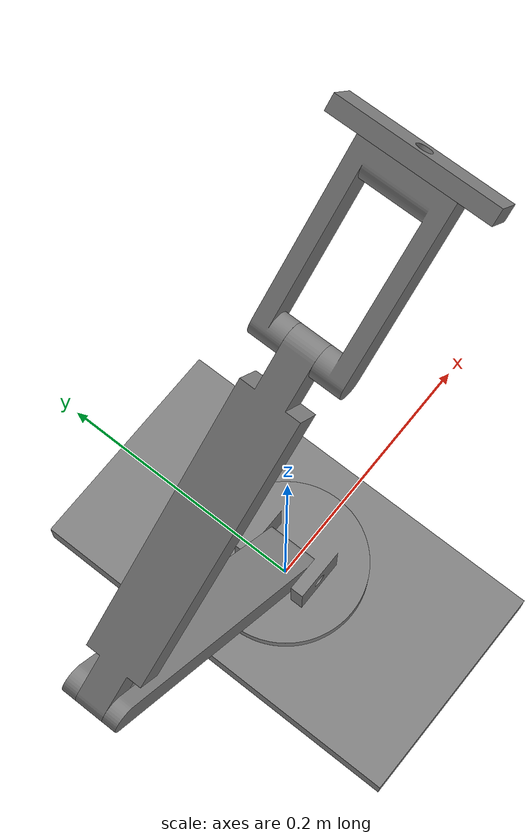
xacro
<?xml version="1.0"?>
<robot xmlns:xacro="http://www.ros.org/wiki/xacro" name="aurora_arm">
    <xacro:arg name="initial_positions_file" default="initial_positions.yaml" />

    <!-- Import aurora_arm urdf file -->
    <xacro:include filename="$(find aurora_arm_v2)/description/aurora_arm.urdf" />

    <!-- Import control_xacro -->
    <xacro:include filename="aurora_arm.ros2_control.xacro" />

    <xacro:aurora_arm_ros2_control name="FakeSystem" initial_positions_file="$(arg initial_positions_file)"/>

</robot>

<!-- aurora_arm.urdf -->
<robot name="aurora_arm">
    <material name="gray">
        <color rgba ="0.5 0.5 0.5 1.0"/>
    </material>

    <link name="base_link">
        <inertial>
            <origin rpy="0 0 0" xyz="0 0 0"/>
            <mass value="100.0"/>
            <inertia ixx="10.0" ixy="0.0" ixz="0.0" iyy="10.0" iyz="0.0" izz="10.0"/>
        </inertial>
        <collision>
            <geometry>
                <box size="0.2 0.2 0.1"/>
            </geometry>
            <origin rpy="0 0 0" xyz="0 0 0.05"/>
        </collision>
    </link>

    <link name = "state_link">
        <visual>
            <origin xyz="0 0 0"/>
            <geometry>
                <mesh filename="package://aurora_arm_v2/meshes/base_link.stl" scale="0.001 0.001 0.001"/>
            </geometry>
            <material name="gray"/>
        </visual>
        <collision>
            <origin xyz="0 0 0"/>
            <geometry>
                <mesh filename="package://aurora_arm_v2/meshes/base_link.stl" scale="0.001 0.001 0.001"/>
            </geometry>
        </collision>
    </link>

    <link name = "base_spin_link">
        <visual>
            <origin xyz="-0.0 -0.03 -0.0"/>
            <geometry>
                <mesh filename="package://aurora_arm_v2/meshes/arm1_link_1.stl" scale="0.001 0.001 0.001"/>
            </geometry>
            <material name="gray"/>
        </visual>
        <collision>
            <origin xyz="-0.0 -0.03 -0.0"/>
            <geometry>
                <mesh filename="package://aurora_arm_v2/meshes/arm1_link_1.stl" scale="0.001 0.001 0.001"/>
            </geometry>
        </collision>
    </link>

    <link name = "arm2_link">
        <visual>
            <origin xyz="5e-06 -0.045 0.02"/>
            <geometry>
                <mesh filename="package://aurora_arm_v2/meshes/arm2_link_1.stl" scale="0.001 0.001 0.001"/>
            </geometry>
            <material name="gray"/>
        </visual>

        <collision>
            <origin xyz="5e-06 -0.045 0.02"/>
            <geometry>
                <mesh filename="package://aurora_arm_v2/meshes/arm2_link_1.stl" scale="0.001 0.001 0.001"/>
            </geometry>
        </collision>

    </link>

    <link name = "arm3_link">
        <visual>
            <origin xyz="0.175348 -0.223192 -0.010046"/>
            <geometry>
                <mesh filename="package://aurora_arm_v2/meshes/arm3_link_1.stl" scale="0.001 0.001 0.001"/>
            </geometry>
            <material name="gray"/>
        </visual>

        <collision>
            <origin xyz="0.175348 -0.223192 -0.010046"/>
            <geometry>
                <mesh filename="package://aurora_arm_v2/meshes/arm3_link_1.stl" scale="0.001 0.001 0.001"/>
            </geometry>
        </collision>

    </link>

    <link name = "arm4_link">
        <visual>
            <origin xyz="-0.011997 -0.388722 0.010003"/>
            <geometry>
                <mesh filename="package://aurora_arm_v2/meshes/arm4_link_1.stl" scale="0.001 0.001 0.001"/>
            </geometry>
            <material name="gray"/>
        </visual>

        <collision>
            <origin xyz="-0.011997 -0.388722 0.010003"/>
            <geometry>
                <mesh filename="package://aurora_arm_v2/meshes/arm4_link_1.stl" scale="0.001 0.001 0.001"/>
            </geometry>
        </collision>

    </link>

    <link name = "arm5_link">
        <visual>
            <origin xyz="-0.026167 -0.502846 7e-06"/>
            <geometry>
                <mesh filename="package://aurora_arm_v2/meshes/arm5_link_1.stl" scale="0.001 0.001 0.001"/>
            </geometry>
            <material name="gray"/>
        </visual>

        <collision>
            <origin xyz="-0.026167 -0.502846 7e-06"/>
            <geometry>
                <mesh filename="package://aurora_arm_v2/meshes/arm5_link_1.stl" scale="0.001 0.001 0.001"/>
            </geometry>
        </collision>

    </link>

    <joint name="base" type="fixed">
        <parent link="base_link"/>
        <child link="state_link"/>
        <origin rpy="1.5707963267948966 0 0" xyz="0 0 0"/>
    </joint>

    <joint name ="body_spin_joint" type="fixed">
        <parent link="state_link"/>
        <child link="base_spin_link"/>
        <origin xyz="0.0 0.03 0.0" rpy="0 0 0"/>
        <axis xyz="0.0 1.0 0.0"/>
        <limit upper="-0.392699" lower="-2.748894" effort="100" velocity="100"/>
    </joint>

    <joint name ="arm1_joint" type="revolute">
        <parent link="base_spin_link"/>
        <child link="arm2_link"/>
        <origin xyz="-5e-06 0.015 -0.02" rpy="0 0 0"/>
        <axis xyz="-0.00026 -0.0 -1.0"/>
        <limit upper="1.570796" lower="-0.785398" effort="100" velocity="100"/>
    </joint>

    <joint name="arm2_joint" type="revolute">
        <parent link="arm2_link"/>
        <child link="arm3_link"/>
        <origin xyz="-0.175343 0.178192 0.030046" rpy="0 0 0"/>
        <axis xyz="-0.00026 0.0 -1.0"/>
        <limit upper="0.785398" lower="-3.141593" effort="100" velocity="100"/>
    </joint>

    <joint name="arm3_joint" type="revolute">
        <parent link="arm3_link"/>
        <child link="arm4_link"/>
        <origin xyz="0.187345 0.16553 -0.020049" rpy="0 0 0"/>
        <axis xyz="-0.00026 0.0 -1.0"/>
        <limit upper="1.570796" lower="-0.872665" effort="100" velocity="100"/>
    </joint>

    <joint name="arm4_joint" type="revolute">
        <parent link="arm4_link"/>
        <child link="arm5_link"/>
        <origin xyz="0.01417 0.114124 0.009996" rpy="0 0 0"/>
        <axis xyz="0.749398 0.662119 -0.000195"/>
        <limit upper="2.356194" lower="-2.356194" effort="100" velocity="100"/>
    </joint>

</robot>
